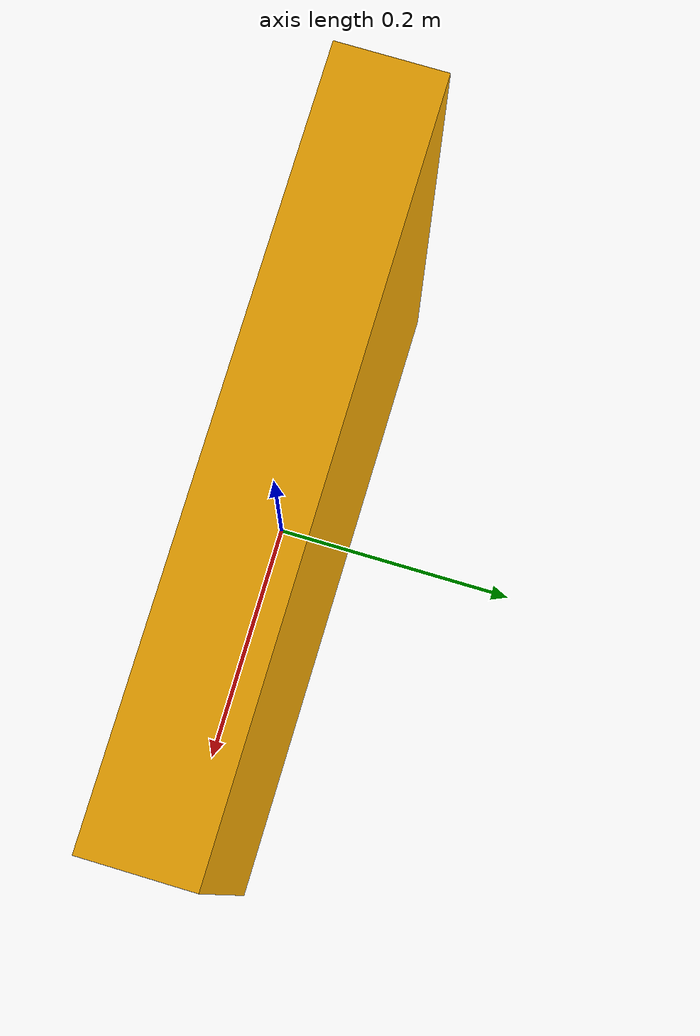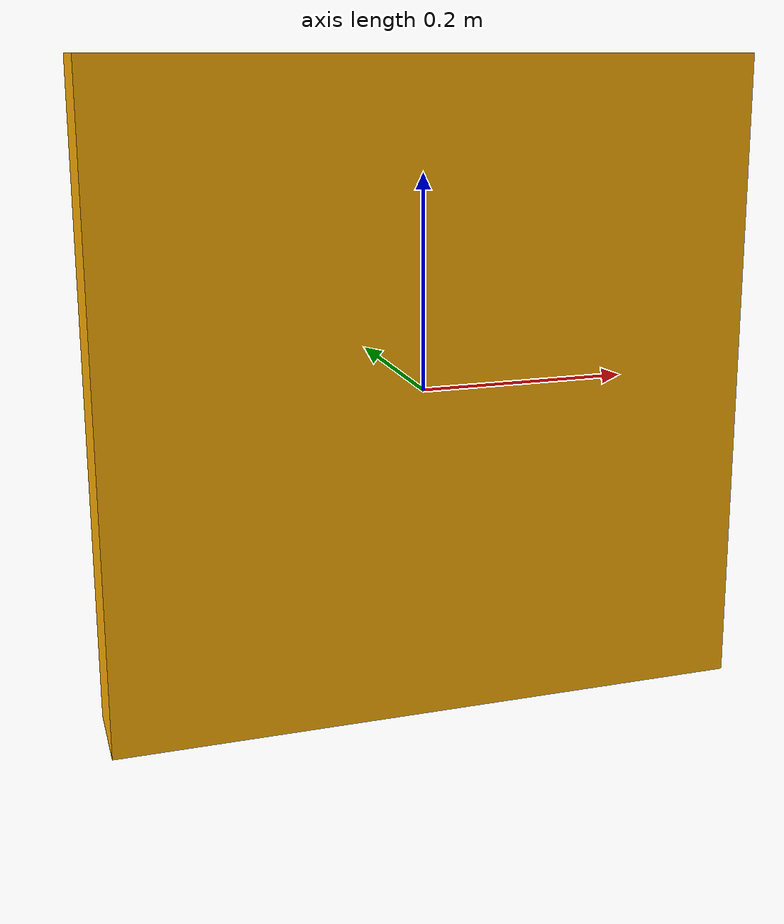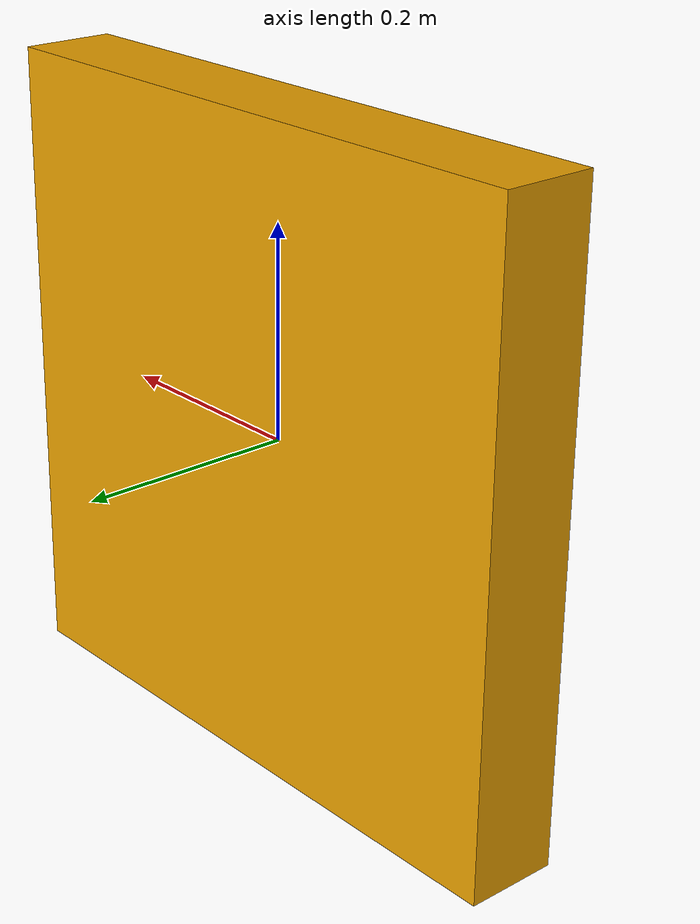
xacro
<?xml version="1.0"?>
<robot name="wall_simple_test"
       xmlns:xacro="http://ros.org/wiki/xacro">

  <!-- Link -->
  <link name="wall" >
    <visual>
      <geometry>
	<box size=".6096 .0889 .6096" />
      </geometry>
    </visual>

    <collision>
      <geometry>
	<box size=".6096 .0889 .6096" />
      </geometry>
    </collision>

    <inertial>
      <mass value=".001" />
      <inertia ixx=".010" ixy="0.0" ixz="0.0" iyy=".010" iyz="0.0" izz=".010" />
    </inertial>
  </link>

  <!-- Adjust friction on block -->
  <gazebo reference="wall">
    <mu1>1</mu1>
    <mu2>1</mu2>
    <minDepth>0</minDepth>
  </gazebo>

  <gazebo>
    <static>false</static>
  </gazebo>

</robot>
